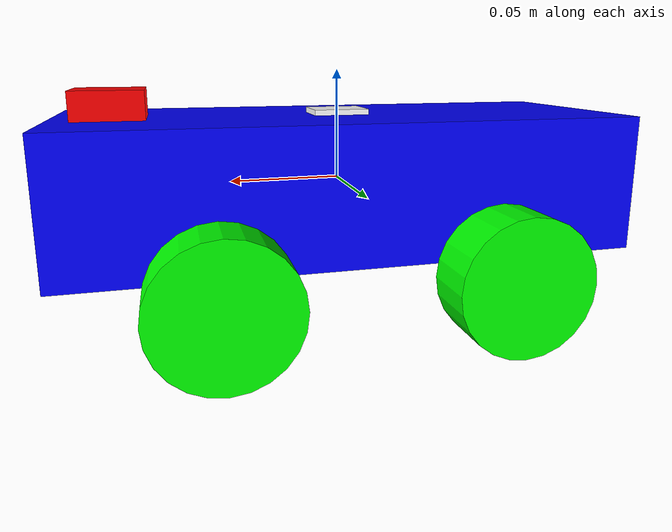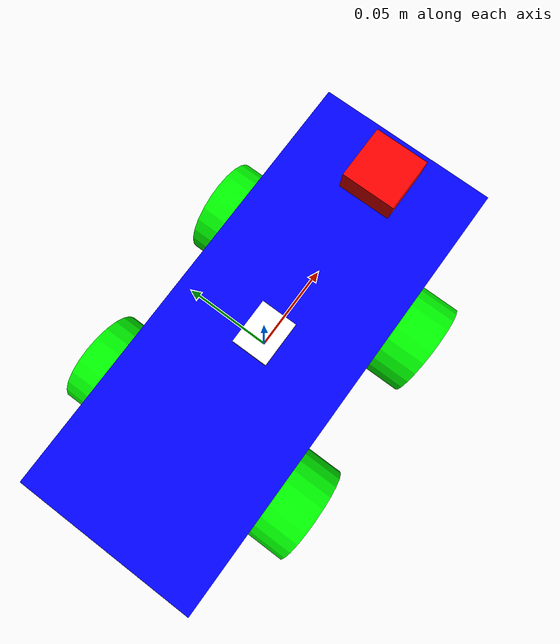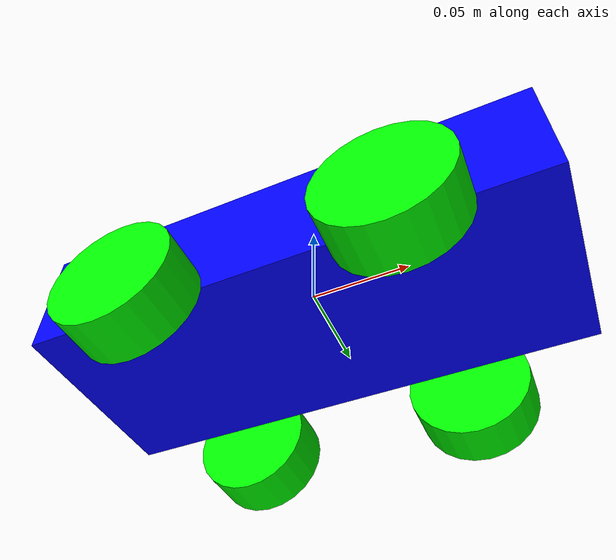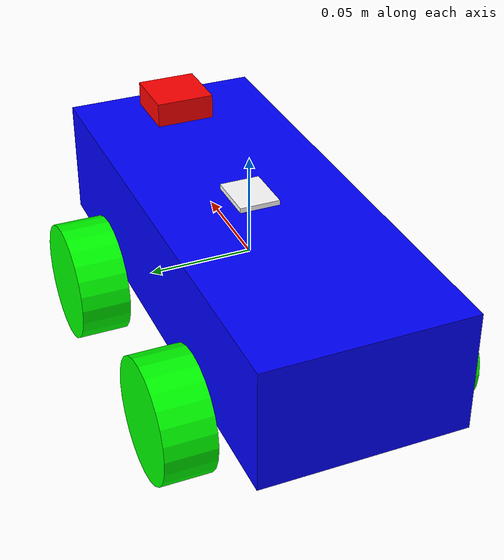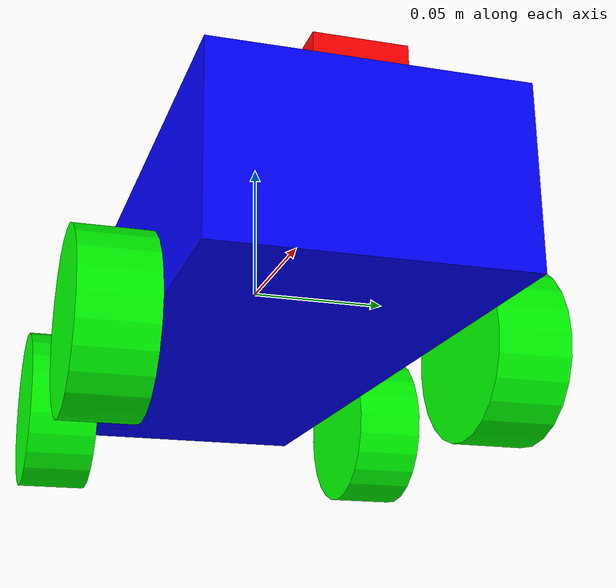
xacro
<?xml version="1.0" encoding="utf-8"?>
<robot xmlns:xacro="http://ros.org/wiki/xacro" name="levibot">

  <!-- paramters to be set from the launch file -->
  <xacro:arg name="use_mock_hardware" default="false" />
  <xacro:arg name="sim_gazebo_classic" default="false" />
  <xacro:arg name="sim_gazebo" default="false" />
  <xacro:arg name="simulation_controllers" default="" />

  <xacro:include filename="$(find levibot_diffdrive)/urdf/levibot.core.xacro"/>
  <xacro:include filename="$(find levibot_diffdrive)/ros2_control/levibot.ros2_control.xacro"/>

  <xacro:levibot_ros2_control
    name="levibot"
    use_mock_hardware="$(arg use_mock_hardware)"
    sim_gazebo_classic="$(arg sim_gazebo_classic)"
    sim_gazebo="$(arg sim_gazebo)"/>

  <xacro:if value="$(arg sim_gazebo_classic)">
    <xacro:include filename="$(find levibot_diffdrive)/urdf/levibot.gazebo.xacro"/>
    <gazebo>
      <plugin filename="libgazebo_ros2_control.so" name="gazebo_ros2_control">
        <parameters>$(arg simulation_controllers)</parameters>
        <ros>
          <remapping>/base_controller/cmd_vel_unstamped:=/cmd_vel</remapping>
        </ros>
      </plugin>
    </gazebo>
  </xacro:if>

  <xacro:if value="$(arg sim_gazebo)">
    <xacro:include filename="$(find levibot_diffdrive)/urdf/levibot.gazebo.xacro"/>
    <gazebo>
        <plugin filename="libgz_ros2_control-system.so" name="gz_ros2_control::GazeboSimROS2ControlPlugin">
        <parameters>$(arg simulation_controllers)</parameters>
        <controller_manager_prefix_node_name>controller_manager</controller_manager_prefix_node_name>
        <ros>
          <remapping>/base_controller/cmd_vel_unstamped:=/cmd_vel</remapping>
          <remapping>/base_controller/odom:=/odom</remapping>
        </ros>
      </plugin>
    </gazebo>
  </xacro:if>
</robot>

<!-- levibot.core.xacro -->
<robot xmlns:xacro="http://ros.org/wiki/xacro">
  <!-- ============= Materials & Intertias =============  -->
  <xacro:include filename="$(find levibot_diffdrive)/urdf/inertial_macros.xacro"/>
  <xacro:include filename="$(find levibot_diffdrive)/urdf/materials.xacro"/>

  <!-- =============== Links & Joints =============== -->
  <link name="base_link"/>

  <!-- Chassis Link  -->
  <joint name="chassis_joint" type="fixed">
    <parent link="base_link"/>
    <child link="chassis"/>
    <origin xyz="0.0 0.0 0.0" rpy="0.0 0.0 0.0"/>
  </joint>

  <link name="chassis">
    <visual>
      <origin xyz="0 0 0" rpy="0 0 0"/>
      <geometry>
        <box size="0.25 0.10 0.06"/>
      </geometry>
      <material name="blue"/>
    </visual>
    <collision>
      <geometry>
        <box size="0.25 0.10 0.06"/>
      </geometry>
    </collision>
    <xacro:inertial_box mass="1.0" x="0.25" y="0.10" z="0.06">
      <origin xyz="0 0 0" rpy="0 0 0"/>
    </xacro:inertial_box>
  </link>

  <!-- Front Right Wheel Link -->
  <joint name="fr_wheel_joint" type="continuous">
    <origin xyz="0.06 -0.065 -0.035" rpy="${pi/2} 0 0"/>
    <parent link="base_link"/>
    <child link="fr_wheel_link"/>
    <axis xyz="0 0 -1"/>
  </joint>

  <link name="fr_wheel_link">
    <visual>
      <origin xyz="0.0 0.0 0.0" rpy="0.0 0.0 0.0"/>
      <geometry>
        <cylinder radius="0.03" length="0.025"/>
      </geometry>
      <material name="green"/>
    </visual>
    <collision>
      <origin xyz="0.0 0.0 0.0" rpy="0.0 0.0 0.0"/>
      <geometry>
        <cylinder radius="0.03" length="0.025"/>
      </geometry>
    </collision>
    <xacro:inertial_cylinder mass="0.1" length="0.025" radius="0.03">
      <origin xyz="0 0 0" rpy="0 0 0"/>
    </xacro:inertial_cylinder>
  </link>

  <!-- Front left Wheel Link -->
  <joint name="fl_wheel_joint" type="continuous">
    <origin xyz="0.06 0.065 -0.035" rpy="-${pi/2} 0 0"/>
    <parent link="base_link"/>
    <child link="fl_wheel_link"/>
    <axis xyz="0 0 1"/>
  </joint>

  <link name="fl_wheel_link">
    <visual>
      <origin xyz="0.0 0.0 0.0" rpy="0.0 0.0 0.0"/>
      <geometry>
        <cylinder radius="0.03" length="0.025"/>
      </geometry>
      <material name="green"/>
    </visual>
    <collision>
      <origin xyz="0.0 0.0 0.0" rpy="0.0 0.0 0.0"/>
      <geometry>
        <cylinder radius="0.03" length="0.025"/>
      </geometry>
    </collision>
    <xacro:inertial_cylinder mass="0.1" length="0.025" radius="0.03">
      <origin xyz="0 0 0" rpy="0 0 0"/>
    </xacro:inertial_cylinder>
  </link>

  <!-- Rare Right Wheel Link -->
  <joint name="rr_wheel_joint" type="continuous">
    <origin xyz="-0.06 -0.065 -0.035" rpy="${pi/2} 0 0"/>
    <parent link="base_link"/>
    <child link="rr_wheel_link"/>
    <axis xyz="0 0 -1"/>
  </joint>

  <link name="rr_wheel_link">
    <visual>
      <origin xyz="0.0 0.0 0.0" rpy="0.0 0.0 0.0"/>
      <geometry>
        <cylinder radius="0.03" length="0.025"/>
      </geometry>
      <material name="green"/>
    </visual>
    <collision>
      <origin xyz="0.0 0.0 0.0" rpy="0.0 0.0 0.0"/>
      <geometry>
        <cylinder radius="0.03" length="0.025"/>
      </geometry>
    </collision>
    <xacro:inertial_cylinder mass="0.1" length="0.025" radius="0.03">
      <origin xyz="0 0 0" rpy="0 0 0"/>
    </xacro:inertial_cylinder>
  </link>

  <!-- Rare left Wheel Link -->
  <joint name="rl_wheel_joint" type="continuous">
    <origin xyz="-0.06 0.065 -0.035" rpy="-${pi/2} 0 0"/>
    <parent link="base_link"/>
    <child link="rl_wheel_link"/>
    <axis xyz="0 0 1"/>
  </joint>

  <link name="rl_wheel_link">
    <visual>
      <origin xyz="0.0 0.0 0.0" rpy="0.0 0.0 0.0"/>
      <geometry>
        <cylinder radius="0.03" length="0.025"/>
      </geometry>
      <material name="green"/>
    </visual>
    <collision>
      <origin xyz="0.0 0.0 0.0" rpy="0.0 0.0 0.0"/>
      <geometry>
        <cylinder radius="0.03" length="0.025"/>
      </geometry>
    </collision>
    <xacro:inertial_cylinder mass="0.1" length="0.025" radius="0.03">
      <origin xyz="0 0 0" rpy="0 0 0"/>
    </xacro:inertial_cylinder>
  </link>

  <!-- Sensors -->

  <!-- IMU Link -->
  <joint name="imu_joint" type="fixed">
    <origin xyz="0.0 0.0 0.03" rpy="0.0 0.0 0.0"/>
    <parent link="base_link"/>
    <child link="imu_link"/>
  </joint>

  <link name="imu_link">
    <collision>
      <geometry>
        <box size="0.025 0.02 0.005"/>
      </geometry>
    </collision>
    <visual>
      <geometry>
        <box size="0.025 0.02 0.005"/>
      </geometry>
      <material name="white" />
    </visual>
    <xacro:inertial_box mass="0.005" x="0.025" y="0.02" z="0.005">
      <origin xyz="0 0 0" rpy="0 0 0"/>
    </xacro:inertial_box>
  </link>

  <!-- LIDAR Link -->
  <joint name="lidar_joint" type="fixed">
    <origin xyz="0.1 0.0 0.03" rpy="0.0 0.0 0.0"/>
    <parent link="base_link"/>
    <child link="levibot/base_link/gpu_lidar"/>
  </joint>

  <link name="levibot/base_link/gpu_lidar">
    <collision>
      <geometry>
        <box size="0.03 0.03 0.025"/>
      </geometry>
    </collision>
    <visual>
      <geometry>
        <box size="0.03 0.03 0.025"/>
      </geometry>
      <material name="red" />
    </visual>
    <xacro:inertial_box mass="0.007" x="0.03" y="0.03" z="0.025">
      <origin xyz="0 0 0" rpy="0 0 0"/>
    </xacro:inertial_box>
  </link>

</robot>

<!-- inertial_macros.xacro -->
<robot xmlns:xacro="http://www.ros.org/wiki/xacro" >

    <!-- Specify some standard inertial calculations https://en.wikipedia.org/wiki/List_of_moments_of_inertia -->
    <!-- These make use of xacro's mathematical functionality -->
    <xacro:macro name="inertial_sphere" params="mass radius *origin">
        <inertial>
            <xacro:insert_block name="origin"/>
            <mass value="${mass}" />
            <inertia ixx="${(2/5) * mass * (radius*radius)}" ixy="0.0" ixz="0.0"
                    iyy="${(2/5) * mass * (radius*radius)}" iyz="0.0"
                    izz="${(2/5) * mass * (radius*radius)}" />
        </inertial>
    </xacro:macro>

    <xacro:macro name="inertial_box" params="mass x y z *origin">
        <inertial>
            <xacro:insert_block name="origin"/>
            <mass value="${mass}" />
            <inertia ixx="${(1/12) * mass * (y*y+z*z)}" ixy="0.0" ixz="0.0"
                    iyy="${(1/12) * mass * (x*x+z*z)}" iyz="0.0"
                    izz="${(1/12) * mass * (x*x+y*y)}" />
        </inertial>
    </xacro:macro>

    <xacro:macro name="inertial_cylinder" params="mass length radius *origin">
        <inertial>
            <xacro:insert_block name="origin"/>
            <mass value="${mass}" />
            <inertia ixx="${(1/12) * mass * (3*radius*radius + length*length)}" ixy="0.0" ixz="0.0"
                    iyy="${(1/12) * mass * (3*radius*radius + length*length)}" iyz="0.0"
                    izz="${(1/2) * mass * (radius*radius)}" />
        </inertial>
    </xacro:macro>

</robot>

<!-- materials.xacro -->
<robot xmlns:xacro="http://www.ros.org/wiki/xacro" >

    <material name="black">
        <color rgba="0 0 0 1"/>
    </material>

    <material name="grey">
        <color rgba="0.5 0.5 0.5 1"/>
    </material>

    <material name="white">
        <color rgba="1 1 1 1"/>
    </material>

    <material name="red">
        <color rgba="1 0 0 1"/>
    </material>

    <material name="green">
        <color rgba="0 1 0 1"/>
    </material>

    <material name="blue">
        <color rgba="0 0 1 1"/>
    </material>

</robot>
